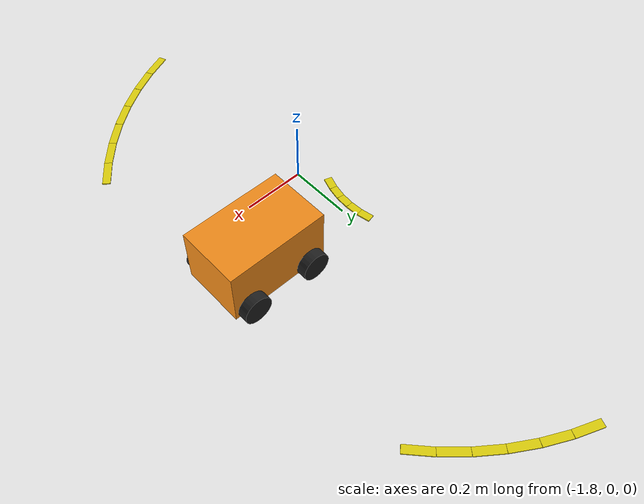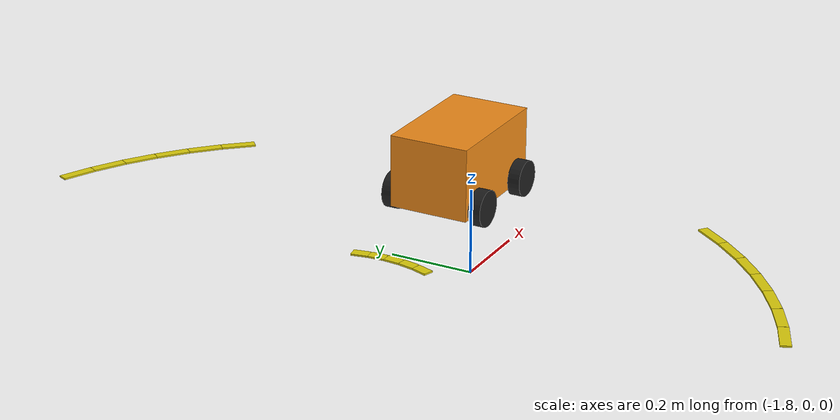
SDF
<sdf version="1.6">
 <world name="limo_competition">
  <include><uri>model://sun</uri></include>
  <model name="roundabout_outer_9">
   <static>true</static>
   <pose>-1.4134243878472372 0.8749471954365433 0.003 0 0 2.312561258892486</pose>
   <link name="link">
    <visual name="visual">
     <geometry><box><size>0.08723877473067196 0.025 0.004</size></box></geometry>
     <material>
      <ambient>0.88 0.82 0.05 1.0</ambient>
      <diffuse>0.88 0.82 0.05 1.0</diffuse>
      <specular>0.05 0.05 0.05 1</specular>
     </material>
    </visual>
   </link>
  </model>
  <model name="roundabout_outer_10">
   <static>true</static>
   <pose>-1.4750528045634566 0.9365756121527627 0.003 0 0 2.399827721492202</pose>
   <link name="link">
    <visual name="visual">
     <geometry><box><size>0.08723877473067211 0.025 0.004</size></box></geometry>
     <material>
      <ambient>0.88 0.82 0.05 1.0</ambient>
      <diffuse>0.88 0.82 0.05 1.0</diffuse>
      <specular>0.05 0.05 0.05 1</specular>
     </material>
    </visual>
   </link>
  </model>
  <model name="roundabout_outer_11">
   <static>true</static>
   <pose>-1.5418179769812073 0.992598243703985 0.003 0 0 2.4870941840919194</pose>
   <link name="link">
    <visual name="visual">
     <geometry><box><size>0.087238774730672 0.025 0.004</size></box></geometry>
     <material>
      <ambient>0.88 0.82 0.05 1.0</ambient>
      <diffuse>0.88 0.82 0.05 1.0</diffuse>
      <specular>0.05 0.05 0.05 1</specular>
     </material>
    </visual>
   </link>
  </model>
  <model name="roundabout_outer_12">
   <static>true</static>
   <pose>-1.6132117818244769 1.0425887240367153 0.003 0 0 2.5743606466916376</pose>
   <link name="link">
    <visual name="visual">
     <geometry><box><size>0.08723877473067186 0.025 0.004</size></box></geometry>
     <material>
      <ambient>0.88 0.82 0.05 1.0</ambient>
      <diffuse>0.88 0.82 0.05 1.0</diffuse>
      <specular>0.05 0.05 0.05 1</specular>
     </material>
    </visual>
   </link>
  </model>
  <model name="roundabout_outer_13">
   <static>true</static>
   <pose>-1.6886908691296503 1.0861665954105444 0.003 0 0 2.661627109291351</pose>
   <link name="link">
    <visual name="visual">
     <geometry><box><size>0.08723877473067201 0.025 0.004</size></box></geometry>
     <material>
      <ambient>0.88 0.82 0.05 1.0</ambient>
      <diffuse>0.88 0.82 0.05 1.0</diffuse>
      <specular>0.05 0.05 0.05 1</specular>
     </material>
    </visual>
   </link>
  </model>
  <model name="roundabout_outer_14">
   <static>true</static>
   <pose>-1.7676807974668156 1.1230002039112792 0.003 0 0 2.748893571891069</pose>
   <link name="link">
    <visual name="visual">
     <geometry><box><size>0.0872387747306719 0.025 0.004</size></box></geometry>
     <material>
      <ambient>0.88 0.82 0.05 1.0</ambient>
      <diffuse>0.88 0.82 0.05 1.0</diffuse>
      <specular>0.05 0.05 0.05 1</specular>
     </material>
    </visual>
   </link>
  </model>
  <model name="roundabout_outer_59">
   <static>true</static>
   <pose>-1.7676807974668156 -0.7230002039112791 0.003 0 0 0.39269908169872314</pose>
   <link name="link">
    <visual name="visual">
     <geometry><box><size>0.08723877473067211 0.025 0.004</size></box></geometry>
     <material>
      <ambient>0.88 0.82 0.05 1.0</ambient>
      <diffuse>0.88 0.82 0.05 1.0</diffuse>
      <specular>0.05 0.05 0.05 1</specular>
     </material>
    </visual>
   </link>
  </model>
  <model name="roundabout_outer_60">
   <static>true</static>
   <pose>-1.68869086912965 -0.6861665954105443 0.003 0 0 0.47996554429844124</pose>
   <link name="link">
    <visual name="visual">
     <geometry><box><size>0.08723877473067171 0.025 0.004</size></box></geometry>
     <material>
      <ambient>0.88 0.82 0.05 1.0</ambient>
      <diffuse>0.88 0.82 0.05 1.0</diffuse>
      <specular>0.05 0.05 0.05 1</specular>
     </material>
    </visual>
   </link>
  </model>
  <model name="roundabout_outer_61">
   <static>true</static>
   <pose>-1.6132117818244769 -0.6425887240367152 0.003 0 0 0.5672320068981579</pose>
   <link name="link">
    <visual name="visual">
     <geometry><box><size>0.08723877473067199 0.025 0.004</size></box></geometry>
     <material>
      <ambient>0.88 0.82 0.05 1.0</ambient>
      <diffuse>0.88 0.82 0.05 1.0</diffuse>
      <specular>0.05 0.05 0.05 1</specular>
     </material>
    </visual>
   </link>
  </model>
  <model name="roundabout_outer_62">
   <static>true</static>
   <pose>-1.5418179769812073 -0.592598243703985 0.003 0 0 0.654498469497872</pose>
   <link name="link">
    <visual name="visual">
     <geometry><box><size>0.08723877473067186 0.025 0.004</size></box></geometry>
     <material>
      <ambient>0.88 0.82 0.05 1.0</ambient>
      <diffuse>0.88 0.82 0.05 1.0</diffuse>
      <specular>0.05 0.05 0.05 1</specular>
     </material>
    </visual>
   </link>
  </model>
  <model name="roundabout_outer_63">
   <static>true</static>
   <pose>-1.4750528045634566 -0.536575612152763 0.003 0 0 0.7417649320975894</pose>
   <link name="link">
    <visual name="visual">
     <geometry><box><size>0.08723877473067196 0.025 0.004</size></box></geometry>
     <material>
      <ambient>0.88 0.82 0.05 1.0</ambient>
      <diffuse>0.88 0.82 0.05 1.0</diffuse>
      <specular>0.05 0.05 0.05 1</specular>
     </material>
    </visual>
   </link>
  </model>
  <model name="roundabout_outer_64">
   <static>true</static>
   <pose>-1.4134243878472372 -0.4749471954365436 0.003 0 0 0.8290313946973068</pose>
   <link name="link">
    <visual name="visual">
     <geometry><box><size>0.08723877473067192 0.025 0.004</size></box></geometry>
     <material>
      <ambient>0.88 0.82 0.05 1.0</ambient>
      <diffuse>0.88 0.82 0.05 1.0</diffuse>
      <specular>0.05 0.05 0.05 1</specular>
     </material>
    </visual>
   </link>
  </model>
  <model name="roundabout_outer_65">
   <static>true</static>
   <pose>-1.3574017562960152 -0.408182023018793 0.003 0 0 0.9162978572970238</pose>
   <link name="link">
    <visual name="visual">
     <geometry><box><size>0.08723877473067178 0.025 0.004</size></box></geometry>
     <material>
      <ambient>0.88 0.82 0.05 1.0</ambient>
      <diffuse>0.88 0.82 0.05 1.0</diffuse>
      <specular>0.05 0.05 0.05 1</specular>
     </material>
    </visual>
   </link>
  </model>
  <model name="roundabout_island_edge_1">
   <static>true</static>
   <pose>-1.83136882218019 0.22088419075520827 0.003 0 0 1.6362461737446823</pose>
   <link name="link">
    <visual name="visual">
     <geometry><box><size>0.04185800270729156 0.025 0.004</size></box></geometry>
     <material>
      <ambient>0.88 0.82 0.05 1.0</ambient>
      <diffuse>0.88 0.82 0.05 1.0</diffuse>
      <specular>0.05 0.05 0.05 1</specular>
     </material>
    </visual>
   </link>
  </model>
  <model name="roundabout_island_edge_2">
   <static>true</static>
   <pose>-1.8368206899739392 0.2622952379716116 0.003 0 0 1.76714586764426</pose>
   <link name="link">
    <visual name="visual">
     <geometry><box><size>0.04185800270729157 0.025 0.004</size></box></geometry>
     <material>
      <ambient>0.88 0.82 0.05 1.0</ambient>
      <diffuse>0.88 0.82 0.05 1.0</diffuse>
      <specular>0.05 0.05 0.05 1</specular>
     </material>
    </visual>
   </link>
  </model>
  <model name="roundabout_island_edge_46">
   <static>true</static>
   <pose>-1.847631142591943 0.09735960360518237 0.003 0 0 1.2435470920459581</pose>
   <link name="link">
    <visual name="visual">
     <geometry><box><size>0.04185800270729154 0.025 0.004</size></box></geometry>
     <material>
      <ambient>0.88 0.82 0.05 1.0</ambient>
      <diffuse>0.88 0.82 0.05 1.0</diffuse>
      <specular>0.05 0.05 0.05 1</specular>
     </material>
    </visual>
   </link>
  </model>
  <model name="roundabout_island_edge_47">
   <static>true</static>
   <pose>-1.8368206899739392 0.13770476202838844 0.003 0 0 1.3744467859455332</pose>
   <link name="link">
    <visual name="visual">
     <geometry><box><size>0.04185800270729153 0.025 0.004</size></box></geometry>
     <material>
      <ambient>0.88 0.82 0.05 1.0</ambient>
      <diffuse>0.88 0.82 0.05 1.0</diffuse>
      <specular>0.05 0.05 0.05 1</specular>
     </material>
    </visual>
   </link>
  </model>
  <model name="roundabout_island_edge_48">
   <static>true</static>
   <pose>-1.83136882218019 0.1791158092447917 0.003 0 0 1.5053464798451108</pose>
   <link name="link">
    <visual name="visual">
     <geometry><box><size>0.0418580027072915 0.025 0.004</size></box></geometry>
     <material>
      <ambient>0.88 0.82 0.05 1.0</ambient>
      <diffuse>0.88 0.82 0.05 1.0</diffuse>
      <specular>0.05 0.05 0.05 1</specular>
     </material>
    </visual>
   </link>
  </model>
  <model name="roundabout_dynamic_obstacle_1">
   <pose>-1.4699999999999998 0.2 0 0 0 0.0</pose>
   <static>false</static>
   <link name="vehicle_link">
    <gravity>false</gravity>
    <kinematic>true</kinematic>
    <visual name="body_visual">
     <pose>0 0 0.125 0 0 0</pose>
     <geometry><box><size>0.32 0.20 0.18</size></box></geometry>
     <material>
      <script><uri>file://media/materials/scripts/gazebo.material</uri><name>Gazebo/Orange</name></script>
     </material>
    </visual>
    <collision name="body_collision">
     <pose>0 0 0.125 0 0 0</pose>
     <geometry><box><size>0.32 0.20 0.18</size></box></geometry>
    </collision>
    <visual name="front_left_wheel">
     <pose>0.105 0.115 0.055 1.5708 0 0</pose>
     <geometry><cylinder><radius>0.045</radius><length>0.032</length></cylinder></geometry>
     <material>
      <script><uri>file://media/materials/scripts/gazebo.material</uri><name>Gazebo/Black</name></script>
     </material>
    </visual>
    <visual name="front_right_wheel">
     <pose>0.105 -0.115 0.055 1.5708 0 0</pose>
     <geometry><cylinder><radius>0.045</radius><length>0.032</length></cylinder></geometry>
     <material>
      <script><uri>file://media/materials/scripts/gazebo.material</uri><name>Gazebo/Black</name></script>
     </material>
    </visual>
    <visual name="rear_left_wheel">
     <pose>-0.105 0.115 0.055 1.5708 0 0</pose>
     <geometry><cylinder><radius>0.045</radius><length>0.032</length></cylinder></geometry>
     <material>
      <script><uri>file://media/materials/scripts/gazebo.material</uri><name>Gazebo/Black</name></script>
     </material>
    </visual>
    <visual name="rear_right_wheel">
     <pose>-0.105 -0.115 0.055 1.5708 0 0</pose>
     <geometry><cylinder><radius>0.045</radius><length>0.032</length></cylinder></geometry>
     <material>
      <script><uri>file://media/materials/scripts/gazebo.material</uri><name>Gazebo/Black</name></script>
     </material>
    </visual>
   </link>
  </model>
 </world>
</sdf>
